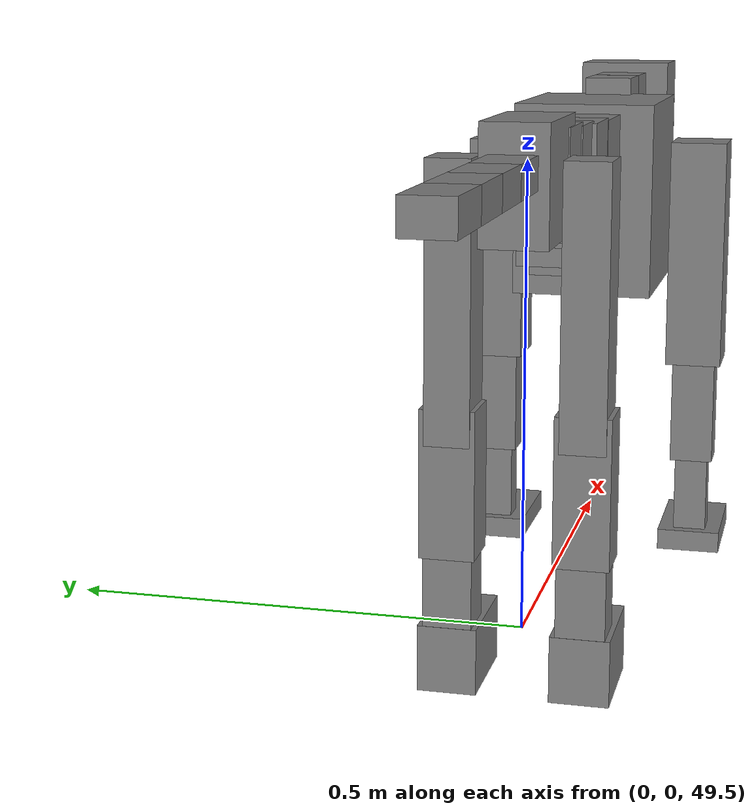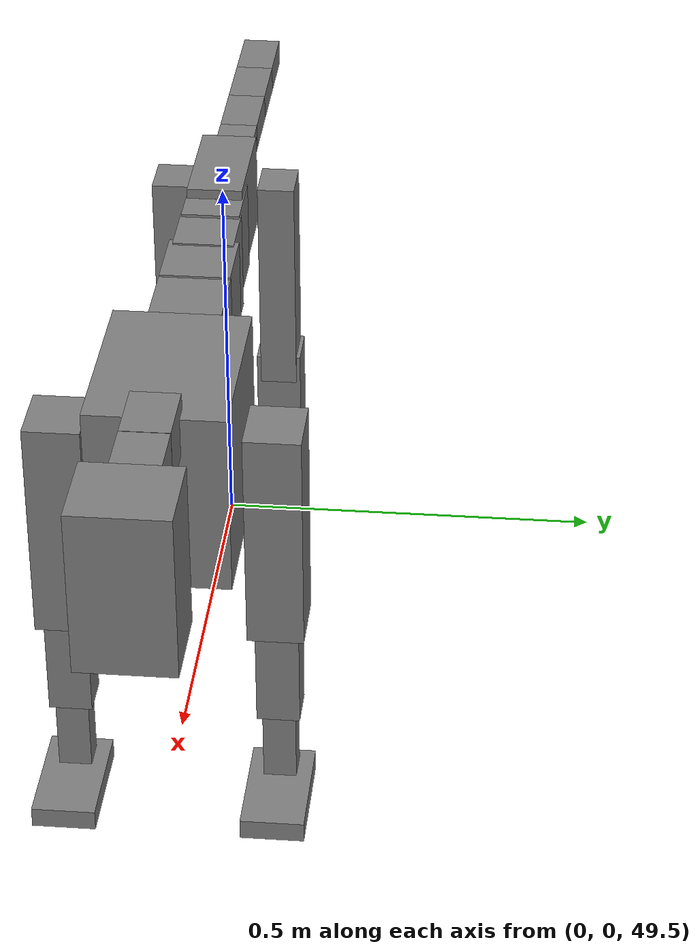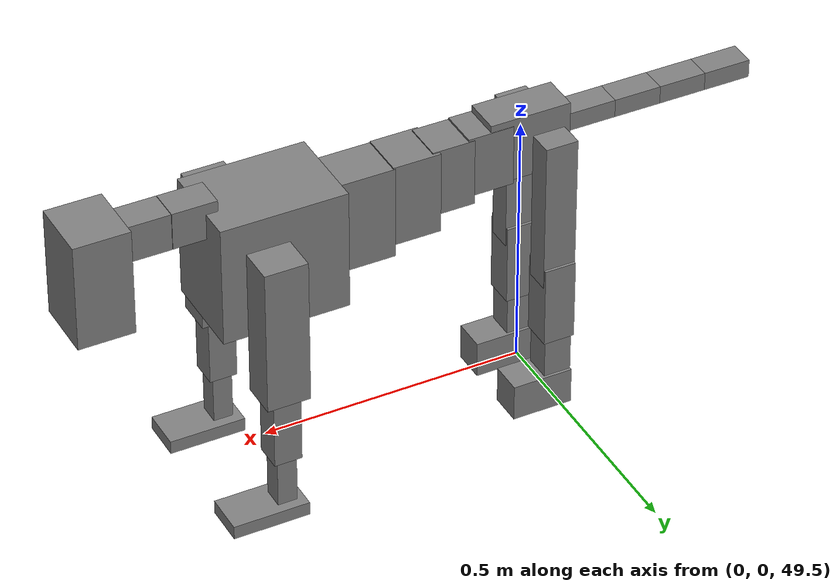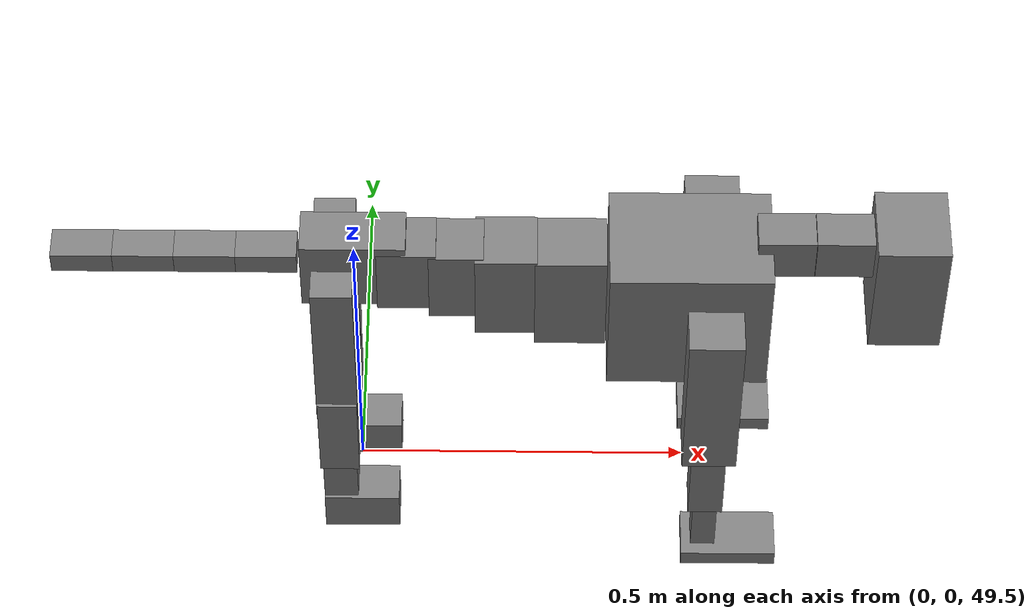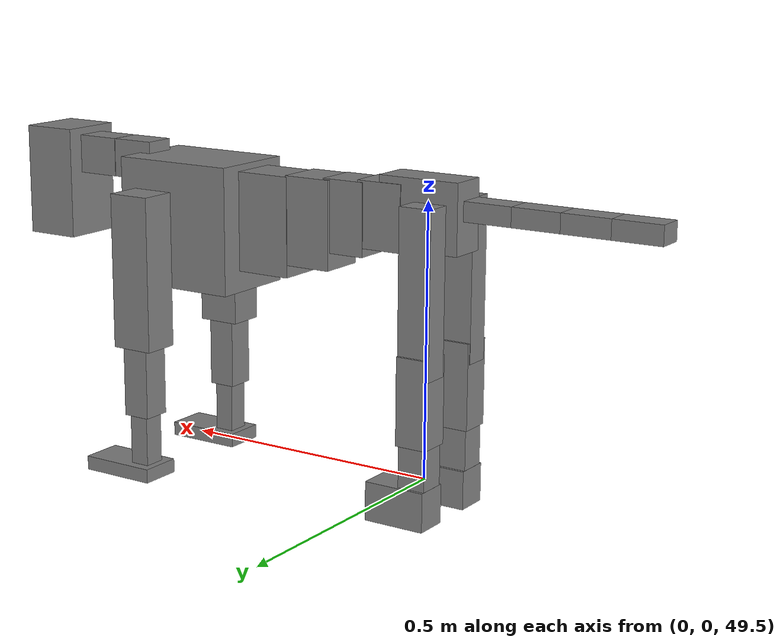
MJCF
<mujoco model="dog">

    <default>
        <joint armature="0.02" stiffness="1" damping="0.2" limited="true"/>
        <geom condim="3" friction="1 0.05 0.05" margin="0.01"/>
        <motor ctrllimited="true" ctrlrange="-1.0 1.0" forcelimited="true" gear="50"/>
    </default>

    <compiler inertiafromgeom="true" angle="radian"/>

    <option timestep="0.016" iterations="50" tolerance="1e-10" solver="Newton" jacobian="dense" cone="pyramidal"/>

    <size nconmax="20000" njmax="60000" nstack="5000000"/>
    <visual>
        <map force="0.1" zfar="30"/>
        <rgba haze="0.15 0.25 0.35 1"/>
        <quality shadowsize="2048"/>
        <global offwidth="800" offheight="800"/>
    </visual>

    <asset>
        <texture type="skybox" builtin="gradient" rgb1="0.3 0.5 0.7" rgb2="0 0 0" width="512" height="512"/>
        <texture name="texplane" type="2d" builtin="checker" rgb1=".2 .3 .4" rgb2=".1 0.15 0.2" width="512" height="512"
                 mark="cross" markrgb=".8 .8 .8"/>
        <texture name="texgeom" type="cube" builtin="flat" mark="cross" width="127" height="1278" rgb1="0.8 0.6 0.4"
                 rgb2="0.8 0.6 0.4" markrgb="1 1 1" random="0.01"/>

        <material name="matplane" reflectance="0.3" texture="texplane" texrepeat="1 1" texuniform="true"/>
        <material name="matgeom" texture="texgeom" texuniform="true" rgba="0.8 0.6 .4 1"/>
    </asset>

    <worldbody>
        <geom name="floor" pos="0 0 0" size="0 0 .25" type="plane" material="matplane" condim="3"/>

        <light directional="false" diffuse=".2 .2 .2" specular="0 0 0" pos="0 0 5" dir="0 0 -1" castshadow="false"/>
        <light mode="targetbodycom" target="torso" directional="false" diffuse=".8 .8 .8" specular="0.3 0.3 0.3"
               pos="0 0 4.0" dir="0 0 -1"/>

        <body name="root" pos="0 0 50">
            <freejoint name="root_1"/>
            <geom type="box" pos="0 0 -0.02" size="0.0774  0.0358  0.063" density="2030"/>

            <body name="spine1" pos="0.054 0 0">
                <joint name="spine1_y" axis="0 1 0" range="0 0.7" limited="true"/>
                <geom type="box" pos="0.02375 0 -0.03" size="0.04375  0.0375  0.05985" density="2030"/>

                <body name="spine2" pos="0.0612 0 0">
                    <joint name="spine2_y" axis="0 1 0" range="-0.15 0.15" limited="true"/>
                    <geom type="box" pos="0.03555  0  -0.04" size="0.04055  0.039  0.06615" density="2030"/>

                    <body name="spine3" pos="0.0730 0 0">
                        <joint name="spine3_y" axis="0 1 0" range="-0.15 0.15" limited="true"/>
                        <geom type="box" pos="0.03555  0  -0.057" size="0.04555  0.0445  0.081" density="2030"/>

                        <body name="spine4" pos="0.0780 0 0">
                            <joint name="spine4_y" axis="0 1 0" range="-0.15 0.15" limited="true"/>
                            <geom type="box" pos="0.05265  0  -0.07" size="0.05265  0.045  0.09135" density="2030"/>

                            <body name="torso" pos="0.1082 0 0">
                                <joint name="torso_y" axis="0 1 0" range="-0.15 0.15" limited="true"/>
                                <geom type="box" pos="0.11925  0  -0.085" size="0.11925  0.085  0.11745"
                                      density="2030"/>

                                <body name="neck1" pos="0.2160  0   0.0180">
                                    <joint name="neck1_y" axis="0 1 0" range="-1.2  -1" limited="true"/>
                                    <geom type="box" pos="0.0423  0  0" size="0.0423  0.03  0.036" density="2325"/>

                                    <body name="neck2" pos="0.0853  0  0">
                                        <joint name="neck2_y" axis="0 1 0" range="0.1  0" limited="true"/>
                                        <geom type="box" pos="0.0423  0  0" size="0.0423  0.03  0.036" density="2325"/>

                                        <body name="head" pos="0.0853  0  0">
                                            <joint name="head_y" axis="0 1 0" range="-0.3  -0.2" limited="true"/>
                                            <geom type="box" pos="0.0531  0  -0.055" size="0.0531  0.06  0.1044"
                                                  density="4030"/>

                                        </body>
                                    </body>
                                </body>

                                <body name="front_shoulder" pos="0.156  0   -0.0480">
                                    <joint name="front_shoulder_y" axis="0 1 0" range="-1 1.5" limited="true"/>
                                    <geom type="box" pos="0 0.13 -0.1165" size="0.0407  0.0348  0.1432" density="1158"/>
                                    <geom type="box" pos="0 -0.13 -0.1165" size="0.0407  0.0348  0.1432"
                                          density="1158"/>

                                    <body name="front_elbow" pos="0  0  -0.2331">
                                        <joint name="front_elbow_y" axis="0 1 0" range="-2 0" limited="true"/>
                                        <geom type="box" pos="0 0.13 -0.0785" size="0.0262  0.0268  0.0785"
                                              density="1081"/>
                                        <geom type="box" pos="0 -0.13 -0.0785" size="0.0262  0.0268  0.0785"
                                              density="1081"/>

                                        <body name="front_wrist" pos="0  0  -0.1569">
                                            <joint name="front_wrist_y" axis="0 1 0" range="-0.2 0" limited="true"/>
                                            <geom type="box" pos="0 0.13 -0.0544" size="0.0186  0.0206  0.0675"
                                                  density="1664"/>
                                            <geom type="box" pos="0 -0.13 -0.0544" size="0.0186  0.0206  0.0675"
                                                  density="1664"/>

                                            <body name="front_finger_end" pos="0  0  -0.1087">
                                                <joint name="front_finger_y" axis="0 1 0" range="-0.4 1"
                                                       limited="true"/>
                                                <geom type="box" pos="0.0396  0.13  0.0019"
                                                      size="0.0726  0.0396  0.0131" density="1515"/>
                                                <geom type="box" pos="0.0396  -0.13  0.0019"
                                                      size="0.0726  0.0396  0.0131" density="1515"/>

                                            </body>

                                        </body>
                                    </body>
                                </body>

                            </body>
                        </body>
                    </body>
                </body>
            </body>

            <body name="back_hip" pos="-0.03 0 -0.018">
                <joint name="back_hip_y" axis="0 1 0" range="-1.5 0.3" limited="true"/>
                <geom type="box" pos="0 0.07 -0.1252" size="0.0309  0.0242  0.1480" density="1154"/>
                <geom type="box" pos="0 -0.07 -0.1252" size="0.0309  0.0242  0.1480" density="1154"/>

                <body name="back_knee" pos="0  0  -0.2504">
                    <joint name="back_knee_y" axis="0 1 0" range="0 2.8" limited="true"/>
                    <geom type="box" pos="0 0.07 -0.0639" size="0.0298  0.0294  0.0794" density="1227"/>
                    <geom type="box" pos="0 -0.07 -0.0639" size="0.0298  0.0294  0.0794" density="1227"/>

                    <body name="back_ankle" pos="0  0  -0.1277">
                        <joint name="back_ankle_y" axis="0 1 0" range="-2.2 0" limited="true"/>
                        <geom type="box" pos="0 0.07 -0.0528" size="0.0260  0.0260  0.0641" density="1284"/>
                        <geom type="box" pos="0 -0.07 -0.0528" size="0.0260  0.0260  0.0641" density="1284"/>

                        <body name="back_toe_end" pos="0  0  -0.1057">
                            <joint name="back_toe_y" axis="0 1 0" range="-0.4 1" limited="true"/>
                            <geom type="box" pos="0.0315  0.07  -0.0206" size="0.0577  0.0315  0.0356" density="1515"/>
                            <geom type="box" pos="0.0315  -0.07  -0.0206" size="0.0577  0.0315  0.0356" density="1515"/>

                        </body>
                    </body>
                </body>
            </body>

            <body name="tail1" pos="-0.074 0 -0.006">
                <joint name="tail1_y" axis="0 1 0" range="-0.2 0.2" limited="true"/>
                <geom type="box" pos="-0.0536  0  0" size="0.045  0.025  0.0175" density="1587"/>

                <body name="tail2" pos="-0.09 0 0">
                    <joint name="tail2_y" axis="0 1 0" range="-0.2 0.2" limited="true"/>
                    <geom type="box" pos="-0.0536  0  0" size="0.045  0.025  0.0175" density="1587"/>

                    <body name="tail3" pos="-0.09 0 0">
                        <joint name="tail3_y" axis="0 1 0" range="-0.2 0.2" limited="true"/>
                        <geom type="box" pos="-0.0536  0  0" size="0.045  0.025  0.0175" density="1587"/>

                        <body name="tail4" pos="-0.09 0 0">
                            <joint name="tail4_y" axis="0 1 0" range="-0.2 0.2" limited="true"/>
                            <geom type="box" pos="-0.0536  0  0" size="0.045  0.025  0.0175" density="1587"/>

                        </body>
                    </body>
                </body>
            </body>
        </body>
    </worldbody>

    <actuator>
        <motor joint="spine1_y" forcerange="-150 150     "/>
        <motor joint="spine2_y" forcerange="-150 150     "/>
        <motor joint="spine3_y" forcerange="-150 150     "/>
        <motor joint="spine4_y" forcerange="-150 150     "/>
        <motor joint="torso_y" forcerange="-150 150     "/>
        <motor joint="neck1_y" forcerange="-100 100       "/>
        <motor joint="neck2_y" forcerange="-100 100       "/>
        <motor joint="head_y" forcerange="-150 150       "/>
        <motor joint="front_shoulder_y" forcerange="-180.47 151.50"/>
        <motor joint="front_elbow_y" forcerange="-100.79 194.32"/>
        <motor joint="front_wrist_y" forcerange="-106.55 58.36"/>
        <motor joint="front_finger_y" forcerange="-79.99 91.19"/>
        <motor joint="back_hip_y" forcerange="-277.06 245.95"/>
        <motor joint="back_knee_y" forcerange="-358.25 268.77"/>
        <motor joint="back_angle_y" forcerange="-134.55 181.79"/>
        <motor joint="back_toe_y" forcerange="-101.22 70.57"/>
        <motor joint="tail1_y" forcerange="-50 50     "/>
        <motor joint="tail2_y" forcerange="-50 50     "/>
        <motor joint="tail3_y" forcerange="-50 50     "/>
        <motor joint="tail4_y" forcerange="-50 50     "/>
    </actuator>
</mujoco>
